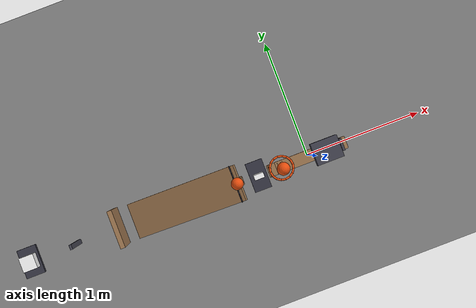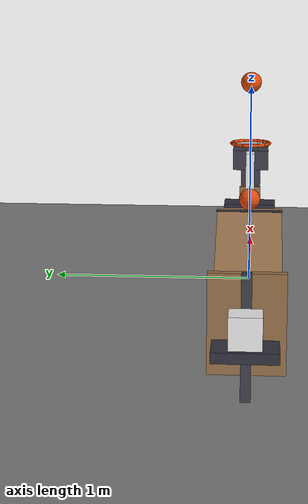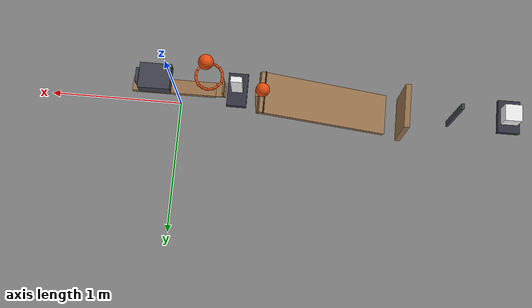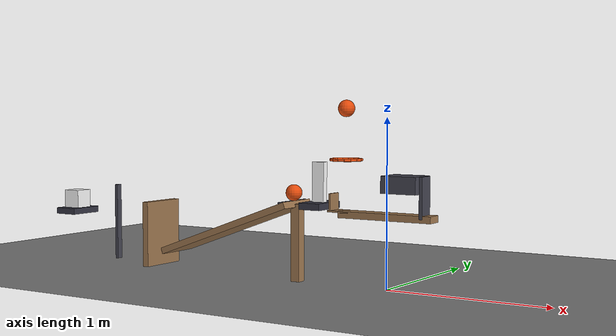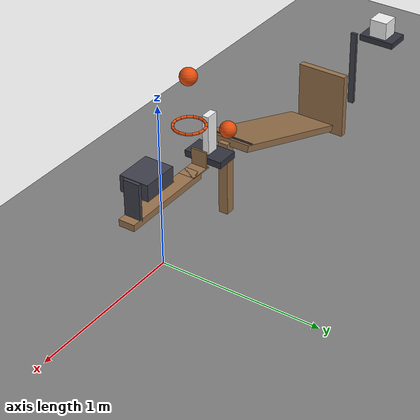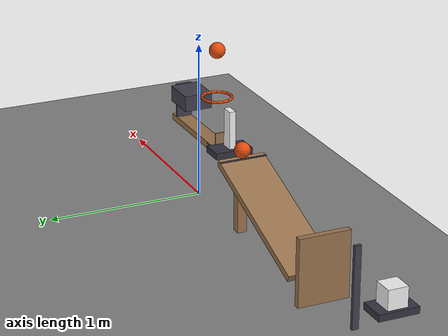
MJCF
<mujoco model="gravity_driven_chain_revised">
  <compiler angle="radian"/>
  <option timestep="0.002"/>
  <worldbody>
    <geom name="floor" type="plane" size="6 6 0.1" friction="0.72 0 0"/>
    <body name="lever1" pos="0 0 0.43">
      <joint name="lever1_hinge" type="hinge" pos="0 0 0" axis="0 1 0" limited="true" range="-0.785398 0" damping="0.04"/>
      <geom name="lever1" type="box" pos="0 0 0" size="0.3 0.05 0.02" mass="0.496" friction="0.72 0 0" solref="0.01 0.715646" rgba="0.6 0.45 0.3 1"/>
      <geom name="lever scoop base" type="box" pos="-0.3 0 0.015" size="0.07 0.05 0.005" mass="0.001" friction="0.72 0 0" solref="0.01 0.715646" rgba="0.6 0.45 0.3 1"/>
      <geom name="lever scoop back" type="box" pos="-0.355 0 0.07" size="0.005 0.05 0.05" mass="0.002" friction="0.72 0 0" solref="0.01 0.715646" rgba="0.6 0.45 0.3 1"/>
      <geom name="lever striker" type="box" pos="0.238 0 0.12" size="0.01 0.05 0.12" mass="0.001" friction="0.72 0 0" solref="0.01 0.715646" rgba="0.25 0.25 0.3 1"/>
    </body>
    <body name="ring1">
      <geom name="ring1_00" type="capsule" size="0.008" fromto="-0.178 0 0.75 -0.185003 0.0352069 0.75" friction="0.72 0 0" solref="0.01 0.715646" rgba="0.9 0.3 0.05 1"/>
      <geom name="ring1_01" type="capsule" size="0.008" fromto="-0.185003 0.0352069 0.75 -0.204946 0.0650538 0.75" friction="0.72 0 0" solref="0.01 0.715646" rgba="0.9 0.3 0.05 1"/>
      <geom name="ring1_02" type="capsule" size="0.008" fromto="-0.204946 0.0650538 0.75 -0.234793 0.0849969 0.75" friction="0.72 0 0" solref="0.01 0.715646" rgba="0.9 0.3 0.05 1"/>
      <geom name="ring1_03" type="capsule" size="0.008" fromto="-0.234793 0.0849969 0.75 -0.27 0.092 0.75" friction="0.72 0 0" solref="0.01 0.715646" rgba="0.9 0.3 0.05 1"/>
      <geom name="ring1_04" type="capsule" size="0.008" fromto="-0.27 0.092 0.75 -0.305207 0.0849969 0.75" friction="0.72 0 0" solref="0.01 0.715646" rgba="0.9 0.3 0.05 1"/>
      <geom name="ring1_05" type="capsule" size="0.008" fromto="-0.305207 0.0849969 0.75 -0.335054 0.0650538 0.75" friction="0.72 0 0" solref="0.01 0.715646" rgba="0.9 0.3 0.05 1"/>
      <geom name="ring1_06" type="capsule" size="0.008" fromto="-0.335054 0.0650538 0.75 -0.354997 0.0352069 0.75" friction="0.72 0 0" solref="0.01 0.715646" rgba="0.9 0.3 0.05 1"/>
      <geom name="ring1_07" type="capsule" size="0.008" fromto="-0.354997 0.0352069 0.75 -0.362 1.12668e-17 0.75" friction="0.72 0 0" solref="0.01 0.715646" rgba="0.9 0.3 0.05 1"/>
      <geom name="ring1_08" type="capsule" size="0.008" fromto="-0.362 1.12668e-17 0.75 -0.354997 -0.0352069 0.75" friction="0.72 0 0" solref="0.01 0.715646" rgba="0.9 0.3 0.05 1"/>
      <geom name="ring1_09" type="capsule" size="0.008" fromto="-0.354997 -0.0352069 0.75 -0.335054 -0.0650538 0.75" friction="0.72 0 0" solref="0.01 0.715646" rgba="0.9 0.3 0.05 1"/>
      <geom name="ring1_10" type="capsule" size="0.008" fromto="-0.335054 -0.0650538 0.75 -0.305207 -0.0849969 0.75" friction="0.72 0 0" solref="0.01 0.715646" rgba="0.9 0.3 0.05 1"/>
      <geom name="ring1_11" type="capsule" size="0.008" fromto="-0.305207 -0.0849969 0.75 -0.27 -0.092 0.75" friction="0.72 0 0" solref="0.01 0.715646" rgba="0.9 0.3 0.05 1"/>
      <geom name="ring1_12" type="capsule" size="0.008" fromto="-0.27 -0.092 0.75 -0.234793 -0.0849969 0.75" friction="0.72 0 0" solref="0.01 0.715646" rgba="0.9 0.3 0.05 1"/>
      <geom name="ring1_13" type="capsule" size="0.008" fromto="-0.234793 -0.0849969 0.75 -0.204946 -0.0650538 0.75" friction="0.72 0 0" solref="0.01 0.715646" rgba="0.9 0.3 0.05 1"/>
      <geom name="ring1_14" type="capsule" size="0.008" fromto="-0.204946 -0.0650538 0.75 -0.185003 -0.0352069 0.75" friction="0.72 0 0" solref="0.01 0.715646" rgba="0.9 0.3 0.05 1"/>
      <geom name="ring1_15" type="capsule" size="0.008" fromto="-0.185003 -0.0352069 0.75 -0.178 -2.25335e-17 0.75" friction="0.72 0 0" solref="0.01 0.715646" rgba="0.9 0.3 0.05 1"/>
    </body>
    <body name="ball1" pos="-0.27 0 1.05">
      <freejoint/>
      <geom name="ball1" type="sphere" pos="0 0 0" size="0.05" mass="0.2" condim="6" friction="0.72 0 0" solref="0.01 0.715646" rgba="0.9 0.3 0.05 1"/>
    </body>
    <body name="cart1" pos="0.115 0 0.62">
      <joint name="cart1_slide" type="slide" pos="0 0 0" axis="1 0 0" limited="true" range="-0.55 0" damping="0.2"/>
      <geom name="cart1" type="box" pos="0 0 0" size="0.11 0.09 0.05" mass="0.5" friction="0.72 0 0" solref="0.01 0.715646" rgba="0.25 0.25 0.3 1"/>
    </body>
    <body name="ramp1">
      <geom name="ramp1_deck" type="box" pos="-1.08091 0 0.302216" size="0.5 0.15 0.02" euler="0 2.79253 0" friction="0.72 0 0" solref="0.01 0.715646" rgba="0.6 0.45 0.3 1"/>
      <geom name="ramp1_leg" type="box" pos="-0.611059 0 0.236613" size="0.03 0.03 0.236613" friction="0.72 0 0" solref="0.01 0.715646" rgba="0.6 0.45 0.3 1"/>
    </body>
    <body name="domino support">
      <geom name="domino support" type="box" pos="-0.455 0 0.47202" size="0.07 0.12 0.02" friction="0.72 0 0" solref="0.01 0.715646" rgba="0.2 0.2 0.25 1"/>
    </body>
    <body name="ramp retaining lip">
      <geom name="ramp retaining lip" type="capsule" size="0.005" fromto="-0.649326 0.15 0.485903 -0.649326 -0.15 0.485903" friction="0.72 0 0" solref="0.01 0.715646" rgba="0.2 0.2 0.25 1"/>
    </body>
    <body name="ball2" pos="-0.635 0 0.539004">
      <freejoint/>
      <geom name="ball2" type="sphere" pos="0 0 0" size="0.05" mass="0.2" condim="6" friction="0.72 0 0" solref="0.01 0.715646" rgba="0.9 0.3 0.05 1"/>
    </body>
    <body name="domino1" pos="-0.455 0 0.61202">
      <freejoint/>
      <geom name="domino1" type="box" pos="0 0 0" size="0.04 0.02 0.12" mass="0.25" friction="0.72 0 0" solref="0.01 0.715646" rgba="0.95 0.95 0.95 1"/>
    </body>
    <body name="door1" pos="-1.67759 0 0.02">
      <joint name="door1_hinge" type="hinge" pos="0 0 0" axis="0 1 0" limited="true" range="-1.22173 0" damping="0.04"/>
      <geom name="door1" type="box" pos="0 0 0.21" size="0.02 0.16 0.21" mass="0.45" friction="0.72 0 0" solref="0.01 0.715646" rgba="0.6 0.45 0.3 1"/>
    </body>
    <body name="pendulum1" pos="-2.05 0 0.03">
      <joint name="pendulum1_hinge" type="hinge" pos="0 0 0" axis="0 1 0" limited="true" range="-0.663225 0" damping="0.04"/>
      <geom name="pendulum1" type="box" pos="0 0 0.25" size="0.01 0.02 0.25" mass="0.35" friction="0.72 0 0" solref="0.01 0.715646" rgba="0.25 0.25 0.3 1"/>
    </body>
    <body name="block support">
      <geom name="block support" type="box" pos="-2.4248 0 0.33784" size="0.08 0.12 0.02" friction="0.72 0 0" solref="0.01 0.715646" rgba="0.2 0.2 0.25 1"/>
    </body>
    <body name="block1" pos="-2.4248 0 0.41784">
      <freejoint/>
      <geom name="block1" type="box" pos="0 0 0" size="0.06 0.06 0.06" mass="0.35" friction="0.72 0 0" solref="0.01 0.715646" rgba="0.95 0.95 0.95 1"/>
    </body>
  </worldbody>
  <keyframe>
    <key name="start" qpos="0 -0.27 0 1.05 1 0 0 0 0 -0.635 0 0.539004 1 0 0 0 -0.455 0 0.61202 1 0 0 0 0 0 -2.4248 0 0.41784 1 0 0 0" qvel="0 0 0 0 0 0 0 0 0 0 0 0 0 0 0 0 0 0 0 0 0 0 0 0 0 0 0 0"/>
  </keyframe>
</mujoco>
